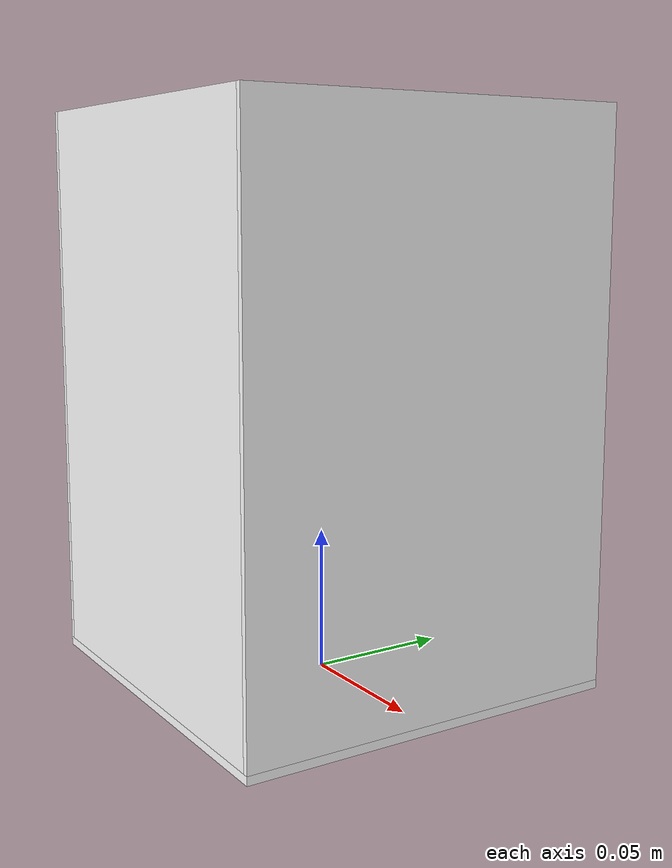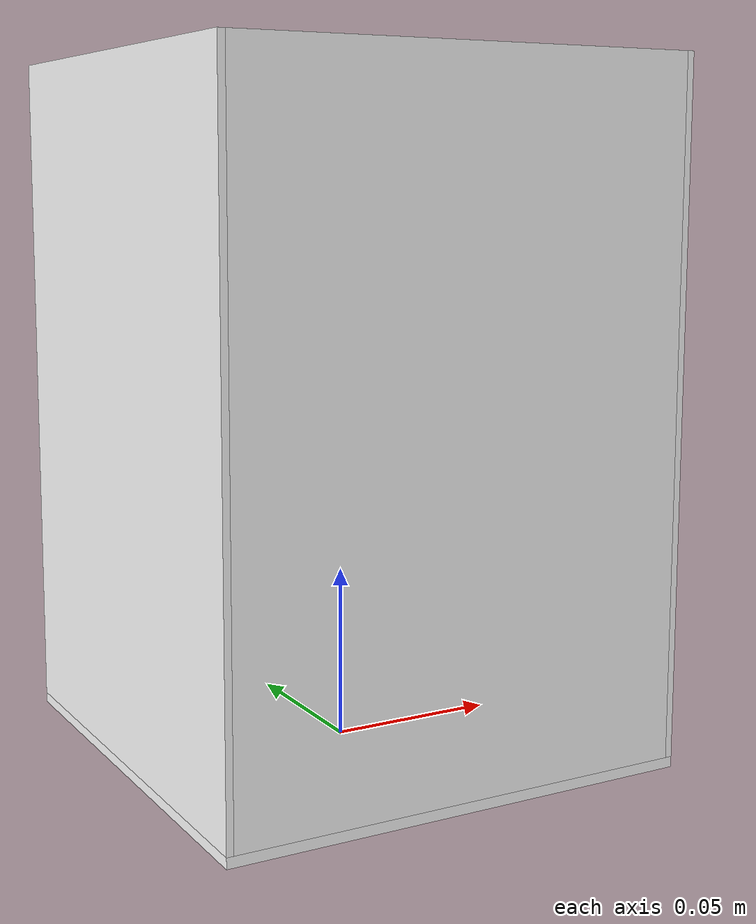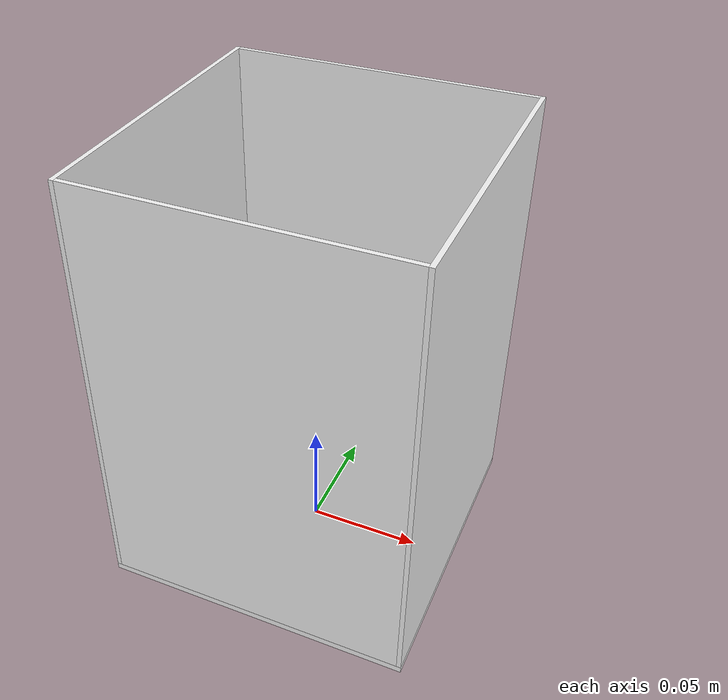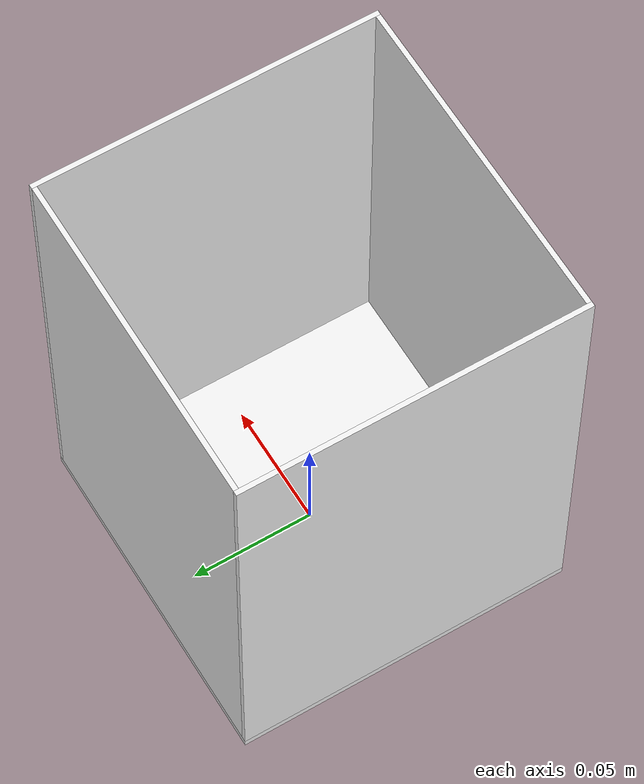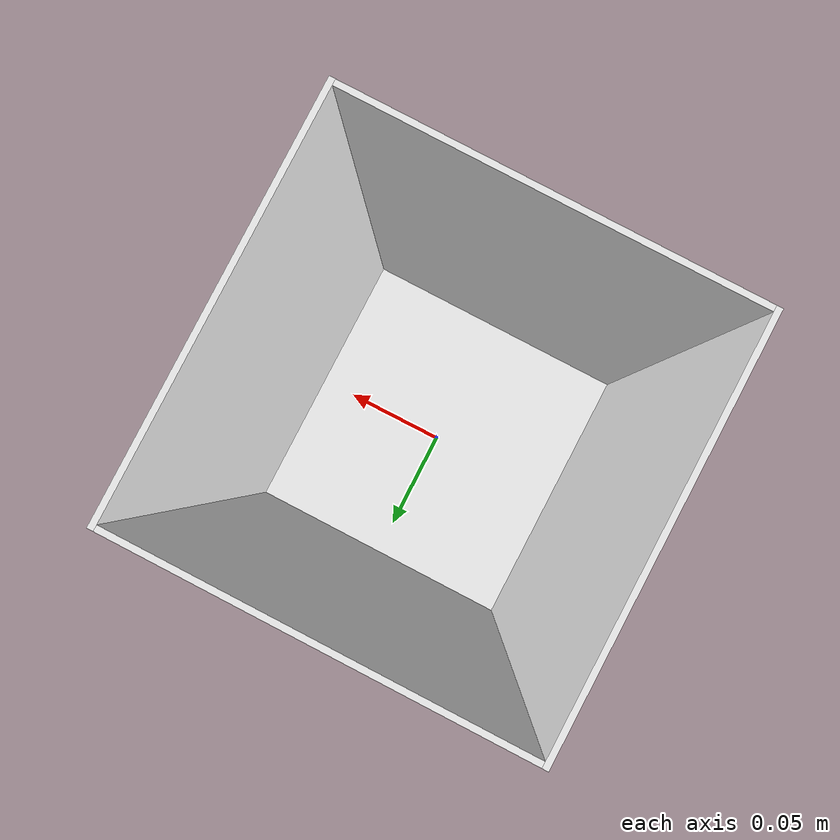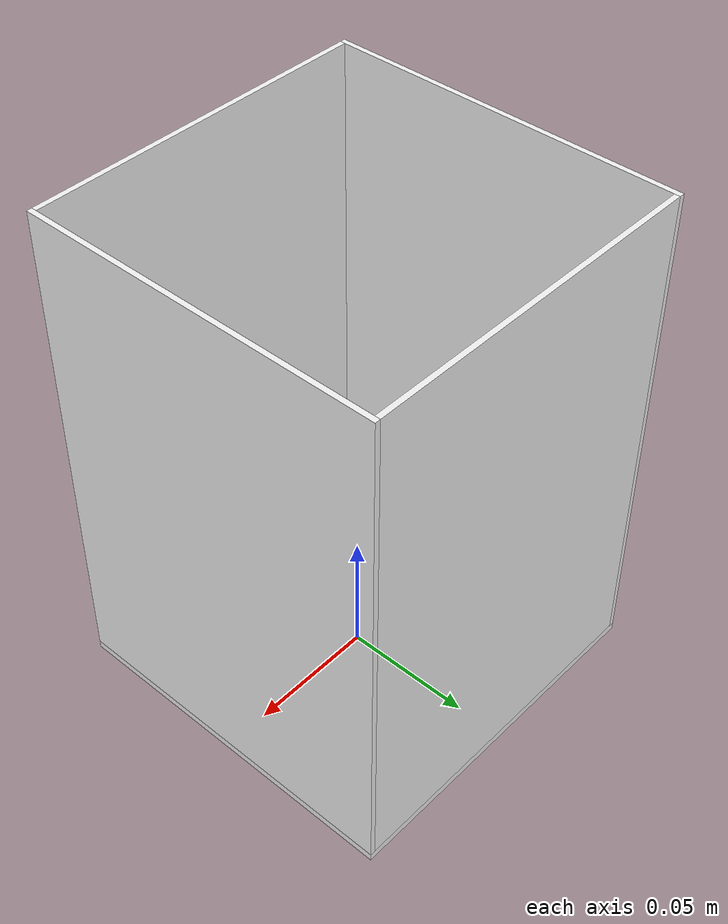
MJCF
<mujoco model="trash_bin">
  <!-- AUTO-GENERATED by build_objects.py. Do not edit by hand.
       137 x 137 x 197 mm open container with square corners:
       floor slab plus 2.0 mm walls. Origin at bottom center. -->

  <default>
    <default class="box_geom">
      <geom condim="4" friction="1.2 0.05 0.001" solref="0.01 1" density="900" rgba="0.95 0.95 0.95 1"/>
    </default>
    <default class="box_print">
      <geom contype="0" conaffinity="0" group="1" mass="0"/>
    </default>
  </default>

  <worldbody>
    <body name="root">
      <freejoint name="free"/>
      <!-- Floor. -->
      <geom name="floor" class="box_geom" type="box" pos="+0.00000 +0.00000 +0.00150" size="+0.06850 +0.06850 +0.00150"/>

      <!-- Side walls. -->
      <geom class="box_geom" type="box"  pos="+0.06750 +0.00000 +0.10000" size="+0.00100 +0.06850 +0.09700"/>
      <geom class="box_geom" type="box"  pos="-0.06750 +0.00000 +0.10000" size="+0.00100 +0.06850 +0.09700"/>
      <geom class="box_geom" type="box"  pos="+0.00000 +0.06750 +0.10000" size="+0.06650 +0.00100 +0.09700"/>
      <geom class="box_geom" type="box"  pos="+0.00000 -0.06750 +0.10000" size="+0.06650 +0.00100 +0.09700"/>
    </body>
  </worldbody>
</mujoco>
